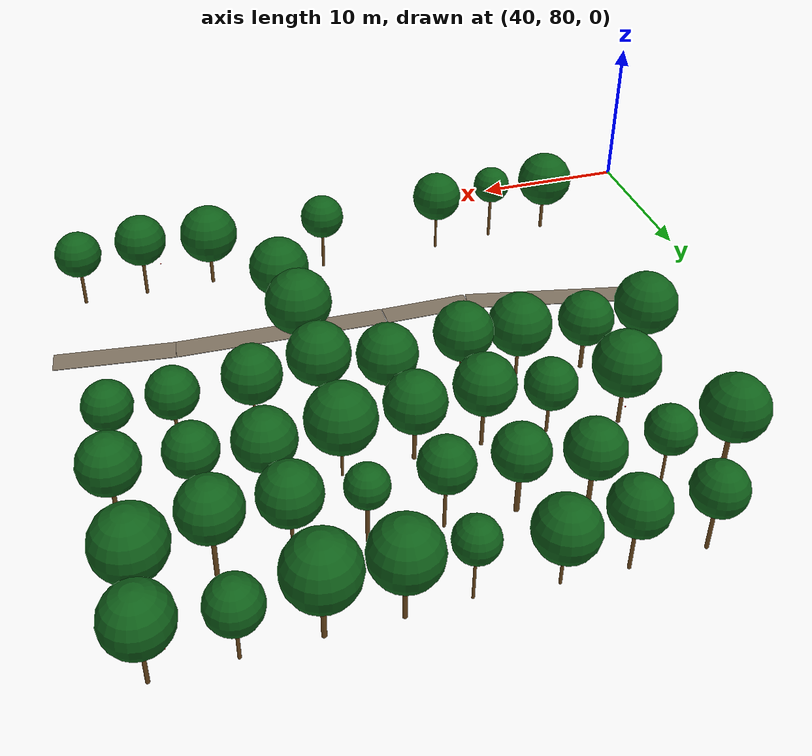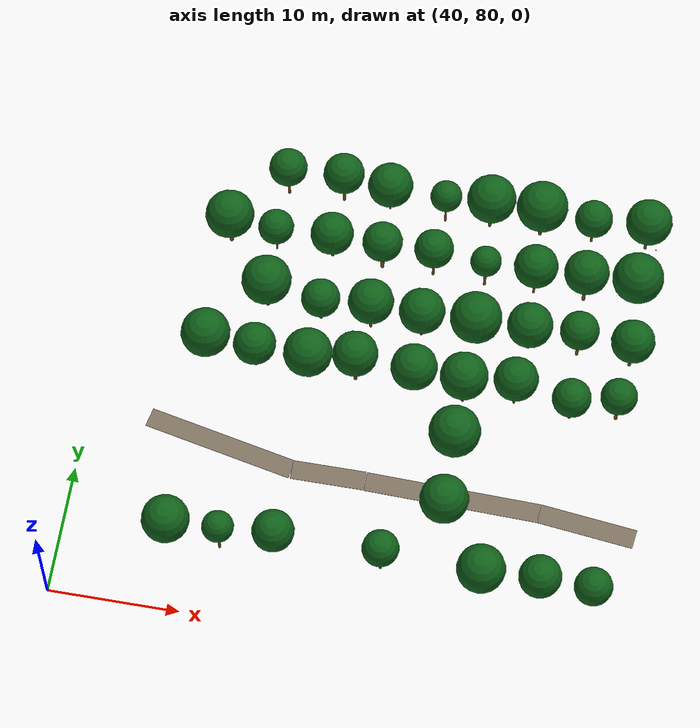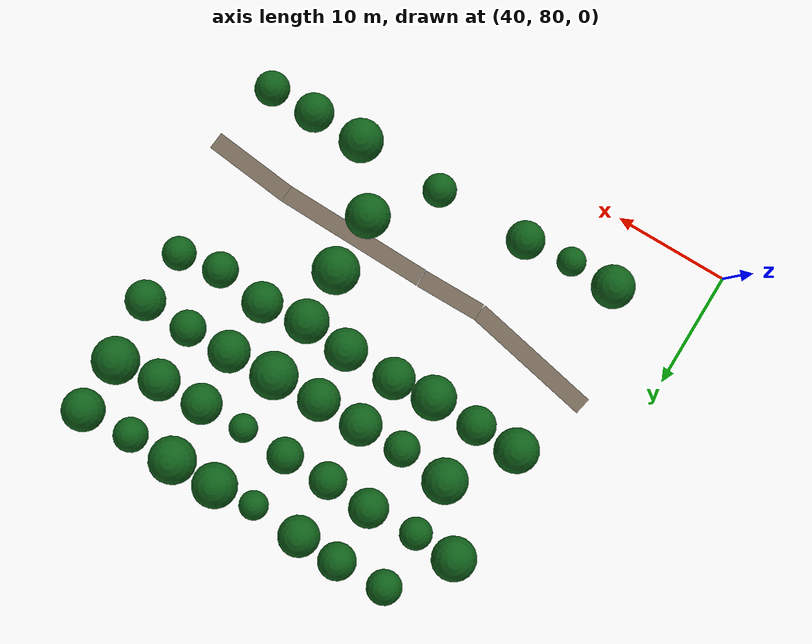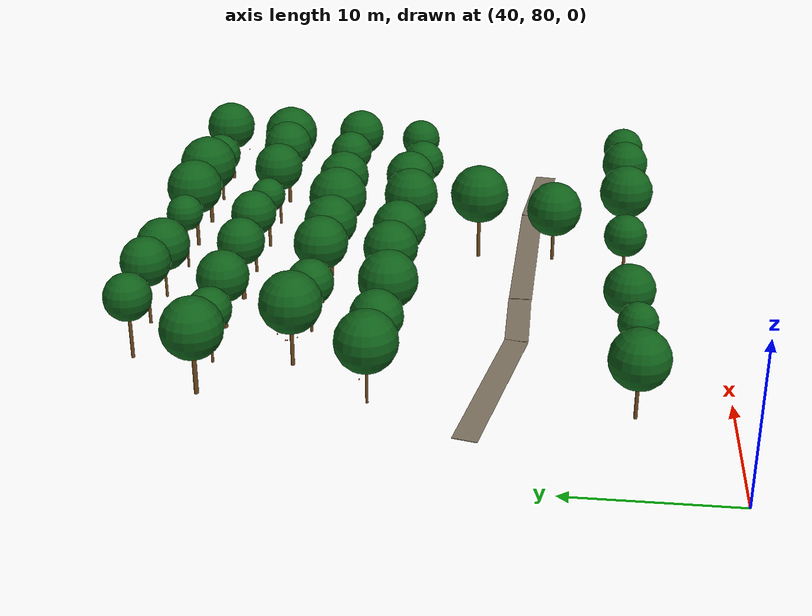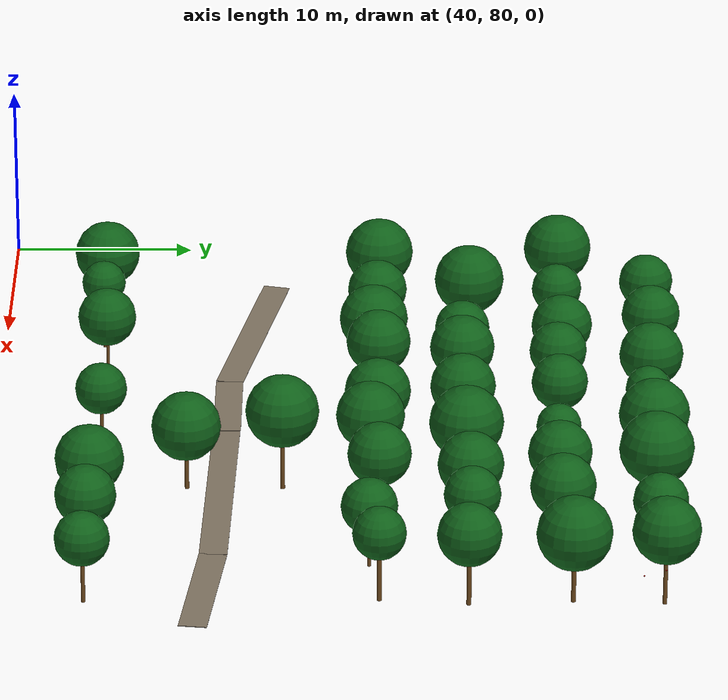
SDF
<sdf version="1.9">
 <world name="cheongsong_orchard">
  <model name="road_45">
   <static>true</static>
   <pose>78.7 91.9 0.02 0 0 3.0266</pose>
   <link name="link">
    <collision name="collision">
     <geometry><box><size>7.4 1.5 0.04</size></box></geometry>
     <surface><friction><ode><mu>0.9</mu><mu2>0.9</mu2></ode></friction></surface>
    </collision>
    <visual name="visual">
     <geometry><box><size>7.4 1.5 0.04</size></box></geometry>
     <material><ambient>0.4 0.35 0.28 1</ambient><diffuse>0.5 0.45 0.38 1</diffuse></material>
    </visual>
   </link>
  </model>
  <model name="road_46">
   <static>true</static>
   <pose>68.4 92.5 0.02 0 0 3.1149</pose>
   <link name="link">
    <collision name="collision">
     <geometry><box><size>13.3 1.5 0.04</size></box></geometry>
     <surface><friction><ode><mu>0.9</mu><mu2>0.9</mu2></ode></friction></surface>
    </collision>
    <visual name="visual">
     <geometry><box><size>13.3 1.5 0.04</size></box></geometry>
     <material><ambient>0.4 0.35 0.28 1</ambient><diffuse>0.5 0.45 0.38 1</diffuse></material>
    </visual>
   </link>
  </model>
  <model name="road_47">
   <static>true</static>
   <pose>58.9 92.7 0.02 0 0 3.1416</pose>
   <link name="link">
    <collision name="collision">
     <geometry><box><size>5.6 1.5 0.04</size></box></geometry>
     <surface><friction><ode><mu>0.9</mu><mu2>0.9</mu2></ode></friction></surface>
    </collision>
    <visual name="visual">
     <geometry><box><size>5.6 1.5 0.04</size></box></geometry>
     <material><ambient>0.4 0.35 0.28 1</ambient><diffuse>0.5 0.45 0.38 1</diffuse></material>
    </visual>
   </link>
  </model>
  <model name="road_48">
   <static>true</static>
   <pose>50.4 93.9 0.02 0 0 2.9339</pose>
   <link name="link">
    <collision name="collision">
     <geometry><box><size>11.7 1.5 0.04</size></box></geometry>
     <surface><friction><ode><mu>0.9</mu><mu2>0.9</mu2></ode></friction></surface>
    </collision>
    <visual name="visual">
     <geometry><box><size>11.7 1.5 0.04</size></box></geometry>
     <material><ambient>0.4 0.35 0.28 1</ambient><diffuse>0.5 0.45 0.38 1</diffuse></material>
    </visual>
   </link>
  </model>
  <model name="apple_tree_2123">
   <static>true</static>
   <pose>48.00 85.62 0 0 0 0</pose>
   <link name="link">
    <collision name="trunk_col">
     <pose>0 0 1.04 0 0 0</pose>
     <geometry><cylinder><radius>0.112</radius><length>2.07</length></cylinder></geometry>
    </collision>
    <visual name="trunk_vis">
     <pose>0 0 1.04 0 0 0</pose>
     <geometry><cylinder><radius>0.112</radius><length>2.07</length></cylinder></geometry>
     <material><ambient>0.35 0.22 0.08 1</ambient><diffuse>0.45 0.30 0.12 1</diffuse></material>
    </visual>
    <collision name="canopy_col">
     <pose>0 0 3.88 0 0 0</pose>
     <geometry><sphere><radius>1.81</radius></sphere></geometry>
    </collision>
    <visual name="canopy_vis">
     <pose>0 0 3.88 0 0 0</pose>
     <geometry><sphere><radius>1.81</radius></sphere></geometry>
     <material><ambient>0.04 0.28 0.06 1</ambient><diffuse>0.06 0.38 0.10 1</diffuse></material>
    </visual>
   </link>
  </model>
  <model name="apple_tree_2124">
   <static>true</static>
   <pose>51.94 85.60 0 0 0 0</pose>
   <link name="link">
    <collision name="trunk_col">
     <pose>0 0 1.43 0 0 0</pose>
     <geometry><cylinder><radius>0.097</radius><length>2.86</length></cylinder></geometry>
    </collision>
    <visual name="trunk_vis">
     <pose>0 0 1.43 0 0 0</pose>
     <geometry><cylinder><radius>0.097</radius><length>2.86</length></cylinder></geometry>
     <material><ambient>0.35 0.22 0.08 1</ambient><diffuse>0.45 0.30 0.12 1</diffuse></material>
    </visual>
    <collision name="canopy_col">
     <pose>0 0 4.07 0 0 0</pose>
     <geometry><sphere><radius>1.21</radius></sphere></geometry>
    </collision>
    <visual name="canopy_vis">
     <pose>0 0 4.07 0 0 0</pose>
     <geometry><sphere><radius>1.21</radius></sphere></geometry>
     <material><ambient>0.04 0.28 0.06 1</ambient><diffuse>0.06 0.38 0.10 1</diffuse></material>
    </visual>
   </link>
  </model>
  <model name="apple_tree_2125">
   <static>true</static>
   <pose>56.02 85.97 0 0 0 0</pose>
   <link name="link">
    <collision name="trunk_col">
     <pose>0 0 1.23 0 0 0</pose>
     <geometry><cylinder><radius>0.081</radius><length>2.45</length></cylinder></geometry>
    </collision>
    <visual name="trunk_vis">
     <pose>0 0 1.23 0 0 0</pose>
     <geometry><cylinder><radius>0.081</radius><length>2.45</length></cylinder></geometry>
     <material><ambient>0.35 0.22 0.08 1</ambient><diffuse>0.45 0.30 0.12 1</diffuse></material>
    </visual>
    <collision name="canopy_col">
     <pose>0 0 4.05 0 0 0</pose>
     <geometry><sphere><radius>1.60</radius></sphere></geometry>
    </collision>
    <visual name="canopy_vis">
     <pose>0 0 4.05 0 0 0</pose>
     <geometry><sphere><radius>1.60</radius></sphere></geometry>
     <material><ambient>0.04 0.28 0.06 1</ambient><diffuse>0.06 0.38 0.10 1</diffuse></material>
    </visual>
   </link>
  </model>
  <model name="apple_tree_2127">
   <static>true</static>
   <pose>64.03 86.01 0 0 0 0</pose>
   <link name="link">
    <collision name="trunk_col">
     <pose>0 0 1.25 0 0 0</pose>
     <geometry><cylinder><radius>0.100</radius><length>2.51</length></cylinder></geometry>
    </collision>
    <visual name="trunk_vis">
     <pose>0 0 1.25 0 0 0</pose>
     <geometry><cylinder><radius>0.100</radius><length>2.51</length></cylinder></geometry>
     <material><ambient>0.35 0.22 0.08 1</ambient><diffuse>0.45 0.30 0.12 1</diffuse></material>
    </visual>
    <collision name="canopy_col">
     <pose>0 0 3.91 0 0 0</pose>
     <geometry><sphere><radius>1.40</radius></sphere></geometry>
    </collision>
    <visual name="canopy_vis">
     <pose>0 0 3.91 0 0 0</pose>
     <geometry><sphere><radius>1.40</radius></sphere></geometry>
     <material><ambient>0.04 0.28 0.06 1</ambient><diffuse>0.06 0.38 0.10 1</diffuse></material>
    </visual>
   </link>
  </model>
  <model name="apple_tree_2129">
   <static>true</static>
   <pose>71.55 85.74 0 0 0 0</pose>
   <link name="link">
    <collision name="trunk_col">
     <pose>0 0 0.98 0 0 0</pose>
     <geometry><cylinder><radius>0.112</radius><length>1.95</length></cylinder></geometry>
    </collision>
    <visual name="trunk_vis">
     <pose>0 0 0.98 0 0 0</pose>
     <geometry><cylinder><radius>0.112</radius><length>1.95</length></cylinder></geometry>
     <material><ambient>0.35 0.22 0.08 1</ambient><diffuse>0.45 0.30 0.12 1</diffuse></material>
    </visual>
    <collision name="canopy_col">
     <pose>0 0 3.79 0 0 0</pose>
     <geometry><sphere><radius>1.84</radius></sphere></geometry>
    </collision>
    <visual name="canopy_vis">
     <pose>0 0 3.79 0 0 0</pose>
     <geometry><sphere><radius>1.84</radius></sphere></geometry>
     <material><ambient>0.04 0.28 0.06 1</ambient><diffuse>0.06 0.38 0.10 1</diffuse></material>
    </visual>
   </link>
  </model>
  <model name="apple_tree_2130">
   <static>true</static>
   <pose>75.92 85.75 0 0 0 0</pose>
   <link name="link">
    <collision name="trunk_col">
     <pose>0 0 1.24 0 0 0</pose>
     <geometry><cylinder><radius>0.108</radius><length>2.48</length></cylinder></geometry>
    </collision>
    <visual name="trunk_vis">
     <pose>0 0 1.24 0 0 0</pose>
     <geometry><cylinder><radius>0.108</radius><length>2.48</length></cylinder></geometry>
     <material><ambient>0.35 0.22 0.08 1</ambient><diffuse>0.45 0.30 0.12 1</diffuse></material>
    </visual>
    <collision name="canopy_col">
     <pose>0 0 4.10 0 0 0</pose>
     <geometry><sphere><radius>1.62</radius></sphere></geometry>
    </collision>
    <visual name="canopy_vis">
     <pose>0 0 4.10 0 0 0</pose>
     <geometry><sphere><radius>1.62</radius></sphere></geometry>
     <material><ambient>0.04 0.28 0.06 1</ambient><diffuse>0.06 0.38 0.10 1</diffuse></material>
    </visual>
   </link>
  </model>
  <model name="apple_tree_2131">
   <static>true</static>
   <pose>79.87 85.76 0 0 0 0</pose>
   <link name="link">
    <collision name="trunk_col">
     <pose>0 0 1.16 0 0 0</pose>
     <geometry><cylinder><radius>0.106</radius><length>2.32</length></cylinder></geometry>
    </collision>
    <visual name="trunk_vis">
     <pose>0 0 1.16 0 0 0</pose>
     <geometry><cylinder><radius>0.106</radius><length>2.32</length></cylinder></geometry>
     <material><ambient>0.35 0.22 0.08 1</ambient><diffuse>0.45 0.30 0.12 1</diffuse></material>
    </visual>
    <collision name="canopy_col">
     <pose>0 0 3.77 0 0 0</pose>
     <geometry><sphere><radius>1.45</radius></sphere></geometry>
    </collision>
    <visual name="canopy_vis">
     <pose>0 0 3.77 0 0 0</pose>
     <geometry><sphere><radius>1.45</radius></sphere></geometry>
     <material><ambient>0.04 0.28 0.06 1</ambient><diffuse>0.06 0.38 0.10 1</diffuse></material>
    </visual>
   </link>
  </model>
  <model name="apple_tree_2174">
   <static>true</static>
   <pose>67.99 90.73 0 0 0 0</pose>
   <link name="link">
    <collision name="trunk_col">
     <pose>0 0 0.98 0 0 0</pose>
     <geometry><cylinder><radius>0.114</radius><length>1.95</length></cylinder></geometry>
    </collision>
    <visual name="trunk_vis">
     <pose>0 0 0.98 0 0 0</pose>
     <geometry><cylinder><radius>0.114</radius><length>1.95</length></cylinder></geometry>
     <material><ambient>0.35 0.22 0.08 1</ambient><diffuse>0.45 0.30 0.12 1</diffuse></material>
    </visual>
    <collision name="canopy_col">
     <pose>0 0 3.81 0 0 0</pose>
     <geometry><sphere><radius>1.86</radius></sphere></geometry>
    </collision>
    <visual name="canopy_vis">
     <pose>0 0 3.81 0 0 0</pose>
     <geometry><sphere><radius>1.86</radius></sphere></geometry>
     <material><ambient>0.04 0.28 0.06 1</ambient><diffuse>0.06 0.38 0.10 1</diffuse></material>
    </visual>
   </link>
  </model>
  <model name="apple_tree_2213">
   <static>true</static>
   <pose>67.93 95.86 0 0 0 0</pose>
   <link name="link">
    <collision name="trunk_col">
     <pose>0 0 1.37 0 0 0</pose>
     <geometry><cylinder><radius>0.121</radius><length>2.74</length></cylinder></geometry>
    </collision>
    <visual name="trunk_vis">
     <pose>0 0 1.37 0 0 0</pose>
     <geometry><cylinder><radius>0.121</radius><length>2.74</length></cylinder></geometry>
     <material><ambient>0.35 0.22 0.08 1</ambient><diffuse>0.45 0.30 0.12 1</diffuse></material>
    </visual>
    <collision name="canopy_col">
     <pose>0 0 4.72 0 0 0</pose>
     <geometry><sphere><radius>1.97</radius></sphere></geometry>
    </collision>
    <visual name="canopy_vis">
     <pose>0 0 4.72 0 0 0</pose>
     <geometry><sphere><radius>1.97</radius></sphere></geometry>
     <material><ambient>0.04 0.28 0.06 1</ambient><diffuse>0.06 0.38 0.10 1</diffuse></material>
    </visual>
   </link>
  </model>
  <model name="apple_tree_2250">
   <static>true</static>
   <pose>48.04 100.99 0 0 0 0</pose>
   <link name="link">
    <collision name="trunk_col">
     <pose>0 0 1.09 0 0 0</pose>
     <geometry><cylinder><radius>0.084</radius><length>2.18</length></cylinder></geometry>
    </collision>
    <visual name="trunk_vis">
     <pose>0 0 1.09 0 0 0</pose>
     <geometry><cylinder><radius>0.084</radius><length>2.18</length></cylinder></geometry>
     <material><ambient>0.35 0.22 0.08 1</ambient><diffuse>0.45 0.30 0.12 1</diffuse></material>
    </visual>
    <collision name="canopy_col">
     <pose>0 0 4.07 0 0 0</pose>
     <geometry><sphere><radius>1.89</radius></sphere></geometry>
    </collision>
    <visual name="canopy_vis">
     <pose>0 0 4.07 0 0 0</pose>
     <geometry><sphere><radius>1.89</radius></sphere></geometry>
     <material><ambient>0.04 0.28 0.06 1</ambient><diffuse>0.06 0.38 0.10 1</diffuse></material>
    </visual>
   </link>
  </model>
  <model name="apple_tree_2251">
   <static>true</static>
   <pose>51.82 100.89 0 0 0 0</pose>
   <link name="link">
    <collision name="trunk_col">
     <pose>0 0 1.01 0 0 0</pose>
     <geometry><cylinder><radius>0.130</radius><length>2.02</length></cylinder></geometry>
    </collision>
    <visual name="trunk_vis">
     <pose>0 0 1.01 0 0 0</pose>
     <geometry><cylinder><radius>0.130</radius><length>2.02</length></cylinder></geometry>
     <material><ambient>0.35 0.22 0.08 1</ambient><diffuse>0.45 0.30 0.12 1</diffuse></material>
    </visual>
    <collision name="canopy_col">
     <pose>0 0 3.66 0 0 0</pose>
     <geometry><sphere><radius>1.64</radius></sphere></geometry>
    </collision>
    <visual name="canopy_vis">
     <pose>0 0 3.66 0 0 0</pose>
     <geometry><sphere><radius>1.64</radius></sphere></geometry>
     <material><ambient>0.04 0.28 0.06 1</ambient><diffuse>0.06 0.38 0.10 1</diffuse></material>
    </visual>
   </link>
  </model>
  <model name="apple_tree_2252">
   <static>true</static>
   <pose>55.95 100.70 0 0 0 0</pose>
   <link name="link">
    <collision name="trunk_col">
     <pose>0 0 1.06 0 0 0</pose>
     <geometry><cylinder><radius>0.099</radius><length>2.11</length></cylinder></geometry>
    </collision>
    <visual name="trunk_vis">
     <pose>0 0 1.06 0 0 0</pose>
     <geometry><cylinder><radius>0.099</radius><length>2.11</length></cylinder></geometry>
     <material><ambient>0.35 0.22 0.08 1</ambient><diffuse>0.45 0.30 0.12 1</diffuse></material>
    </visual>
    <collision name="canopy_col">
     <pose>0 0 3.99 0 0 0</pose>
     <geometry><sphere><radius>1.88</radius></sphere></geometry>
    </collision>
    <visual name="canopy_vis">
     <pose>0 0 3.99 0 0 0</pose>
     <geometry><sphere><radius>1.88</radius></sphere></geometry>
     <material><ambient>0.04 0.28 0.06 1</ambient><diffuse>0.06 0.38 0.10 1</diffuse></material>
    </visual>
   </link>
  </model>
  <model name="apple_tree_2253">
   <static>true</static>
   <pose>59.53 100.97 0 0 0 0</pose>
   <link name="link">
    <collision name="trunk_col">
     <pose>0 0 1.36 0 0 0</pose>
     <geometry><cylinder><radius>0.134</radius><length>2.71</length></cylinder></geometry>
    </collision>
    <visual name="trunk_vis">
     <pose>0 0 1.36 0 0 0</pose>
     <geometry><cylinder><radius>0.134</radius><length>2.71</length></cylinder></geometry>
     <material><ambient>0.35 0.22 0.08 1</ambient><diffuse>0.45 0.30 0.12 1</diffuse></material>
    </visual>
    <collision name="canopy_col">
     <pose>0 0 4.46 0 0 0</pose>
     <geometry><sphere><radius>1.75</radius></sphere></geometry>
    </collision>
    <visual name="canopy_vis">
     <pose>0 0 4.46 0 0 0</pose>
     <geometry><sphere><radius>1.75</radius></sphere></geometry>
     <material><ambient>0.04 0.28 0.06 1</ambient><diffuse>0.06 0.38 0.10 1</diffuse></material>
    </visual>
   </link>
  </model>
  <model name="apple_tree_2254">
   <static>true</static>
   <pose>64.03 100.94 0 0 0 0</pose>
   <link name="link">
    <collision name="trunk_col">
     <pose>0 0 1.02 0 0 0</pose>
     <geometry><cylinder><radius>0.092</radius><length>2.03</length></cylinder></geometry>
    </collision>
    <visual name="trunk_vis">
     <pose>0 0 1.02 0 0 0</pose>
     <geometry><cylinder><radius>0.092</radius><length>2.03</length></cylinder></geometry>
     <material><ambient>0.35 0.22 0.08 1</ambient><diffuse>0.45 0.30 0.12 1</diffuse></material>
    </visual>
    <collision name="canopy_col">
     <pose>0 0 3.83 0 0 0</pose>
     <geometry><sphere><radius>1.79</radius></sphere></geometry>
    </collision>
    <visual name="canopy_vis">
     <pose>0 0 3.83 0 0 0</pose>
     <geometry><sphere><radius>1.79</radius></sphere></geometry>
     <material><ambient>0.04 0.28 0.06 1</ambient><diffuse>0.06 0.38 0.10 1</diffuse></material>
    </visual>
   </link>
  </model>
  <model name="apple_tree_2255">
   <static>true</static>
   <pose>67.89 100.56 0 0 0 0</pose>
   <link name="link">
    <collision name="trunk_col">
     <pose>0 0 1.31 0 0 0</pose>
     <geometry><cylinder><radius>0.114</radius><length>2.62</length></cylinder></geometry>
    </collision>
    <visual name="trunk_vis">
     <pose>0 0 1.31 0 0 0</pose>
     <geometry><cylinder><radius>0.114</radius><length>2.62</length></cylinder></geometry>
     <material><ambient>0.35 0.22 0.08 1</ambient><diffuse>0.45 0.30 0.12 1</diffuse></material>
    </visual>
    <collision name="canopy_col">
     <pose>0 0 4.47 0 0 0</pose>
     <geometry><sphere><radius>1.84</radius></sphere></geometry>
    </collision>
    <visual name="canopy_vis">
     <pose>0 0 4.47 0 0 0</pose>
     <geometry><sphere><radius>1.84</radius></sphere></geometry>
     <material><ambient>0.04 0.28 0.06 1</ambient><diffuse>0.06 0.38 0.10 1</diffuse></material>
    </visual>
   </link>
  </model>
  <model name="apple_tree_2256">
   <static>true</static>
   <pose>71.77 101.05 0 0 0 0</pose>
   <link name="link">
    <collision name="trunk_col">
     <pose>0 0 1.29 0 0 0</pose>
     <geometry><cylinder><radius>0.084</radius><length>2.58</length></cylinder></geometry>
    </collision>
    <visual name="trunk_vis">
     <pose>0 0 1.29 0 0 0</pose>
     <geometry><cylinder><radius>0.084</radius><length>2.58</length></cylinder></geometry>
     <material><ambient>0.35 0.22 0.08 1</ambient><diffuse>0.45 0.30 0.12 1</diffuse></material>
    </visual>
    <collision name="canopy_col">
     <pose>0 0 4.29 0 0 0</pose>
     <geometry><sphere><radius>1.70</radius></sphere></geometry>
    </collision>
    <visual name="canopy_vis">
     <pose>0 0 4.29 0 0 0</pose>
     <geometry><sphere><radius>1.70</radius></sphere></geometry>
     <material><ambient>0.04 0.28 0.06 1</ambient><diffuse>0.06 0.38 0.10 1</diffuse></material>
    </visual>
   </link>
  </model>
  <model name="apple_tree_2257">
   <static>true</static>
   <pose>76.09 100.53 0 0 0 0</pose>
   <link name="link">
    <collision name="trunk_col">
     <pose>0 0 1.05 0 0 0</pose>
     <geometry><cylinder><radius>0.105</radius><length>2.10</length></cylinder></geometry>
    </collision>
    <visual name="trunk_vis">
     <pose>0 0 1.05 0 0 0</pose>
     <geometry><cylinder><radius>0.105</radius><length>2.10</length></cylinder></geometry>
     <material><ambient>0.35 0.22 0.08 1</ambient><diffuse>0.45 0.30 0.12 1</diffuse></material>
    </visual>
    <collision name="canopy_col">
     <pose>0 0 3.60 0 0 0</pose>
     <geometry><sphere><radius>1.50</radius></sphere></geometry>
    </collision>
    <visual name="canopy_vis">
     <pose>0 0 3.60 0 0 0</pose>
     <geometry><sphere><radius>1.50</radius></sphere></geometry>
     <material><ambient>0.04 0.28 0.06 1</ambient><diffuse>0.06 0.38 0.10 1</diffuse></material>
    </visual>
   </link>
  </model>
  <model name="apple_tree_2258">
   <static>true</static>
   <pose>79.58 101.06 0 0 0 0</pose>
   <link name="link">
    <collision name="trunk_col">
     <pose>0 0 1.29 0 0 0</pose>
     <geometry><cylinder><radius>0.133</radius><length>2.58</length></cylinder></geometry>
    </collision>
    <visual name="trunk_vis">
     <pose>0 0 1.29 0 0 0</pose>
     <geometry><cylinder><radius>0.133</radius><length>2.58</length></cylinder></geometry>
     <material><ambient>0.35 0.22 0.08 1</ambient><diffuse>0.45 0.30 0.12 1</diffuse></material>
    </visual>
    <collision name="canopy_col">
     <pose>0 0 3.99 0 0 0</pose>
     <geometry><sphere><radius>1.41</radius></sphere></geometry>
    </collision>
    <visual name="canopy_vis">
     <pose>0 0 3.99 0 0 0</pose>
     <geometry><sphere><radius>1.41</radius></sphere></geometry>
     <material><ambient>0.04 0.28 0.06 1</ambient><diffuse>0.06 0.38 0.10 1</diffuse></material>
    </visual>
   </link>
  </model>
  <model name="apple_tree_2300">
   <static>true</static>
   <pose>51.80 106.02 0 0 0 0</pose>
   <link name="link">
    <collision name="trunk_col">
     <pose>0 0 1.18 0 0 0</pose>
     <geometry><cylinder><radius>0.119</radius><length>2.36</length></cylinder></geometry>
    </collision>
    <visual name="trunk_vis">
     <pose>0 0 1.18 0 0 0</pose>
     <geometry><cylinder><radius>0.119</radius><length>2.36</length></cylinder></geometry>
     <material><ambient>0.35 0.22 0.08 1</ambient><diffuse>0.45 0.30 0.12 1</diffuse></material>
    </visual>
    <collision name="canopy_col">
     <pose>0 0 4.29 0 0 0</pose>
     <geometry><sphere><radius>1.92</radius></sphere></geometry>
    </collision>
    <visual name="canopy_vis">
     <pose>0 0 4.29 0 0 0</pose>
     <geometry><sphere><radius>1.92</radius></sphere></geometry>
     <material><ambient>0.04 0.28 0.06 1</ambient><diffuse>0.06 0.38 0.10 1</diffuse></material>
    </visual>
   </link>
  </model>
  <model name="apple_tree_2301">
   <static>true</static>
   <pose>56.05 105.59 0 0 0 0</pose>
   <link name="link">
    <collision name="trunk_col">
     <pose>0 0 1.00 0 0 0</pose>
     <geometry><cylinder><radius>0.096</radius><length>1.99</length></cylinder></geometry>
    </collision>
    <visual name="trunk_vis">
     <pose>0 0 1.00 0 0 0</pose>
     <geometry><cylinder><radius>0.096</radius><length>1.99</length></cylinder></geometry>
     <material><ambient>0.35 0.22 0.08 1</ambient><diffuse>0.45 0.30 0.12 1</diffuse></material>
    </visual>
    <collision name="canopy_col">
     <pose>0 0 3.49 0 0 0</pose>
     <geometry><sphere><radius>1.50</radius></sphere></geometry>
    </collision>
    <visual name="canopy_vis">
     <pose>0 0 3.49 0 0 0</pose>
     <geometry><sphere><radius>1.50</radius></sphere></geometry>
     <material><ambient>0.04 0.28 0.06 1</ambient><diffuse>0.06 0.38 0.10 1</diffuse></material>
    </visual>
   </link>
  </model>
  <model name="apple_tree_2302">
   <static>true</static>
   <pose>59.94 105.54 0 0 0 0</pose>
   <link name="link">
    <collision name="trunk_col">
     <pose>0 0 1.30 0 0 0</pose>
     <geometry><cylinder><radius>0.112</radius><length>2.60</length></cylinder></geometry>
    </collision>
    <visual name="trunk_vis">
     <pose>0 0 1.30 0 0 0</pose>
     <geometry><cylinder><radius>0.112</radius><length>2.60</length></cylinder></geometry>
     <material><ambient>0.35 0.22 0.08 1</ambient><diffuse>0.45 0.30 0.12 1</diffuse></material>
    </visual>
    <collision name="canopy_col">
     <pose>0 0 4.36 0 0 0</pose>
     <geometry><sphere><radius>1.76</radius></sphere></geometry>
    </collision>
    <visual name="canopy_vis">
     <pose>0 0 4.36 0 0 0</pose>
     <geometry><sphere><radius>1.76</radius></sphere></geometry>
     <material><ambient>0.04 0.28 0.06 1</ambient><diffuse>0.06 0.38 0.10 1</diffuse></material>
    </visual>
   </link>
  </model>
  <model name="apple_tree_2303">
   <static>true</static>
   <pose>63.87 105.54 0 0 0 0</pose>
   <link name="link">
    <collision name="trunk_col">
     <pose>0 0 1.15 0 0 0</pose>
     <geometry><cylinder><radius>0.120</radius><length>2.31</length></cylinder></geometry>
    </collision>
    <visual name="trunk_vis">
     <pose>0 0 1.15 0 0 0</pose>
     <geometry><cylinder><radius>0.120</radius><length>2.31</length></cylinder></geometry>
     <material><ambient>0.35 0.22 0.08 1</ambient><diffuse>0.45 0.30 0.12 1</diffuse></material>
    </visual>
    <collision name="canopy_col">
     <pose>0 0 4.08 0 0 0</pose>
     <geometry><sphere><radius>1.77</radius></sphere></geometry>
    </collision>
    <visual name="canopy_vis">
     <pose>0 0 4.08 0 0 0</pose>
     <geometry><sphere><radius>1.77</radius></sphere></geometry>
     <material><ambient>0.04 0.28 0.06 1</ambient><diffuse>0.06 0.38 0.10 1</diffuse></material>
    </visual>
   </link>
  </model>
  <model name="apple_tree_2304">
   <static>true</static>
   <pose>67.99 105.68 0 0 0 0</pose>
   <link name="link">
    <collision name="trunk_col">
     <pose>0 0 1.06 0 0 0</pose>
     <geometry><cylinder><radius>0.081</radius><length>2.13</length></cylinder></geometry>
    </collision>
    <visual name="trunk_vis">
     <pose>0 0 1.06 0 0 0</pose>
     <geometry><cylinder><radius>0.081</radius><length>2.13</length></cylinder></geometry>
     <material><ambient>0.35 0.22 0.08 1</ambient><diffuse>0.45 0.30 0.12 1</diffuse></material>
    </visual>
    <collision name="canopy_col">
     <pose>0 0 4.12 0 0 0</pose>
     <geometry><sphere><radius>2.00</radius></sphere></geometry>
    </collision>
    <visual name="canopy_vis">
     <pose>0 0 4.12 0 0 0</pose>
     <geometry><sphere><radius>2.00</radius></sphere></geometry>
     <material><ambient>0.04 0.28 0.06 1</ambient><diffuse>0.06 0.38 0.10 1</diffuse></material>
    </visual>
   </link>
  </model>
  <model name="apple_tree_2305">
   <static>true</static>
   <pose>72.11 105.86 0 0 0 0</pose>
   <link name="link">
    <collision name="trunk_col">
     <pose>0 0 1.06 0 0 0</pose>
     <geometry><cylinder><radius>0.133</radius><length>2.11</length></cylinder></geometry>
    </collision>
    <visual name="trunk_vis">
     <pose>0 0 1.06 0 0 0</pose>
     <geometry><cylinder><radius>0.133</radius><length>2.11</length></cylinder></geometry>
     <material><ambient>0.35 0.22 0.08 1</ambient><diffuse>0.45 0.30 0.12 1</diffuse></material>
    </visual>
    <collision name="canopy_col">
     <pose>0 0 3.88 0 0 0</pose>
     <geometry><sphere><radius>1.76</radius></sphere></geometry>
    </collision>
    <visual name="canopy_vis">
     <pose>0 0 3.88 0 0 0</pose>
     <geometry><sphere><radius>1.76</radius></sphere></geometry>
     <material><ambient>0.04 0.28 0.06 1</ambient><diffuse>0.06 0.38 0.10 1</diffuse></material>
    </visual>
   </link>
  </model>
  <model name="apple_tree_2306">
   <static>true</static>
   <pose>75.88 105.89 0 0 0 0</pose>
   <link name="link">
    <collision name="trunk_col">
     <pose>0 0 1.35 0 0 0</pose>
     <geometry><cylinder><radius>0.120</radius><length>2.70</length></cylinder></geometry>
    </collision>
    <visual name="trunk_vis">
     <pose>0 0 1.35 0 0 0</pose>
     <geometry><cylinder><radius>0.120</radius><length>2.70</length></cylinder></geometry>
     <material><ambient>0.35 0.22 0.08 1</ambient><diffuse>0.45 0.30 0.12 1</diffuse></material>
    </visual>
    <collision name="canopy_col">
     <pose>0 0 4.20 0 0 0</pose>
     <geometry><sphere><radius>1.50</radius></sphere></geometry>
    </collision>
    <visual name="canopy_vis">
     <pose>0 0 4.20 0 0 0</pose>
     <geometry><sphere><radius>1.50</radius></sphere></geometry>
     <material><ambient>0.04 0.28 0.06 1</ambient><diffuse>0.06 0.38 0.10 1</diffuse></material>
    </visual>
   </link>
  </model>
  <model name="apple_tree_2307">
   <static>true</static>
   <pose>79.98 105.69 0 0 0 0</pose>
   <link name="link">
    <collision name="trunk_col">
     <pose>0 0 1.24 0 0 0</pose>
     <geometry><cylinder><radius>0.122</radius><length>2.49</length></cylinder></geometry>
    </collision>
    <visual name="trunk_vis">
     <pose>0 0 1.24 0 0 0</pose>
     <geometry><cylinder><radius>0.122</radius><length>2.49</length></cylinder></geometry>
     <material><ambient>0.35 0.22 0.08 1</ambient><diffuse>0.45 0.30 0.12 1</diffuse></material>
    </visual>
    <collision name="canopy_col">
     <pose>0 0 4.17 0 0 0</pose>
     <geometry><sphere><radius>1.68</radius></sphere></geometry>
    </collision>
    <visual name="canopy_vis">
     <pose>0 0 4.17 0 0 0</pose>
     <geometry><sphere><radius>1.68</radius></sphere></geometry>
     <material><ambient>0.04 0.28 0.06 1</ambient><diffuse>0.06 0.38 0.10 1</diffuse></material>
    </visual>
   </link>
  </model>
  <model name="apple_tree_2343">
   <static>true</static>
   <pose>48.01 111.04 0 0 0 0</pose>
   <link name="link">
    <collision name="trunk_col">
     <pose>0 0 1.24 0 0 0</pose>
     <geometry><cylinder><radius>0.141</radius><length>2.48</length></cylinder></geometry>
    </collision>
    <visual name="trunk_vis">
     <pose>0 0 1.24 0 0 0</pose>
     <geometry><cylinder><radius>0.141</radius><length>2.48</length></cylinder></geometry>
     <material><ambient>0.35 0.22 0.08 1</ambient><diffuse>0.45 0.30 0.12 1</diffuse></material>
    </visual>
    <collision name="canopy_col">
     <pose>0 0 4.35 0 0 0</pose>
     <geometry><sphere><radius>1.88</radius></sphere></geometry>
    </collision>
    <visual name="canopy_vis">
     <pose>0 0 4.35 0 0 0</pose>
     <geometry><sphere><radius>1.88</radius></sphere></geometry>
     <material><ambient>0.04 0.28 0.06 1</ambient><diffuse>0.06 0.38 0.10 1</diffuse></material>
    </visual>
   </link>
  </model>
  <model name="apple_tree_2344">
   <static>true</static>
   <pose>51.62 110.92 0 0 0 0</pose>
   <link name="link">
    <collision name="trunk_col">
     <pose>0 0 1.13 0 0 0</pose>
     <geometry><cylinder><radius>0.082</radius><length>2.26</length></cylinder></geometry>
    </collision>
    <visual name="trunk_vis">
     <pose>0 0 1.13 0 0 0</pose>
     <geometry><cylinder><radius>0.082</radius><length>2.26</length></cylinder></geometry>
     <material><ambient>0.35 0.22 0.08 1</ambient><diffuse>0.45 0.30 0.12 1</diffuse></material>
    </visual>
    <collision name="canopy_col">
     <pose>0 0 3.64 0 0 0</pose>
     <geometry><sphere><radius>1.38</radius></sphere></geometry>
    </collision>
    <visual name="canopy_vis">
     <pose>0 0 3.64 0 0 0</pose>
     <geometry><sphere><radius>1.38</radius></sphere></geometry>
     <material><ambient>0.04 0.28 0.06 1</ambient><diffuse>0.06 0.38 0.10 1</diffuse></material>
    </visual>
   </link>
  </model>
  <model name="apple_tree_2345">
   <static>true</static>
   <pose>55.96 111.09 0 0 0 0</pose>
   <link name="link">
    <collision name="trunk_col">
     <pose>0 0 0.99 0 0 0</pose>
     <geometry><cylinder><radius>0.135</radius><length>1.97</length></cylinder></geometry>
    </collision>
    <visual name="trunk_vis">
     <pose>0 0 0.99 0 0 0</pose>
     <geometry><cylinder><radius>0.135</radius><length>1.97</length></cylinder></geometry>
     <material><ambient>0.35 0.22 0.08 1</ambient><diffuse>0.45 0.30 0.12 1</diffuse></material>
    </visual>
    <collision name="canopy_col">
     <pose>0 0 3.64 0 0 0</pose>
     <geometry><sphere><radius>1.67</radius></sphere></geometry>
    </collision>
    <visual name="canopy_vis">
     <pose>0 0 3.64 0 0 0</pose>
     <geometry><sphere><radius>1.67</radius></sphere></geometry>
     <material><ambient>0.04 0.28 0.06 1</ambient><diffuse>0.06 0.38 0.10 1</diffuse></material>
    </visual>
   </link>
  </model>
  <model name="apple_tree_2346">
   <static>true</static>
   <pose>59.94 110.77 0 0 0 0</pose>
   <link name="link">
    <collision name="trunk_col">
     <pose>0 0 1.31 0 0 0</pose>
     <geometry><cylinder><radius>0.150</radius><length>2.61</length></cylinder></geometry>
    </collision>
    <visual name="trunk_vis">
     <pose>0 0 1.31 0 0 0</pose>
     <geometry><cylinder><radius>0.150</radius><length>2.61</length></cylinder></geometry>
     <material><ambient>0.35 0.22 0.08 1</ambient><diffuse>0.45 0.30 0.12 1</diffuse></material>
    </visual>
    <collision name="canopy_col">
     <pose>0 0 4.18 0 0 0</pose>
     <geometry><sphere><radius>1.56</radius></sphere></geometry>
    </collision>
    <visual name="canopy_vis">
     <pose>0 0 4.18 0 0 0</pose>
     <geometry><sphere><radius>1.56</radius></sphere></geometry>
     <material><ambient>0.04 0.28 0.06 1</ambient><diffuse>0.06 0.38 0.10 1</diffuse></material>
    </visual>
   </link>
  </model>
  <model name="apple_tree_2347">
   <static>true</static>
   <pose>63.93 110.75 0 0 0 0</pose>
   <link name="link">
    <collision name="trunk_col">
     <pose>0 0 1.43 0 0 0</pose>
     <geometry><cylinder><radius>0.097</radius><length>2.86</length></cylinder></geometry>
    </collision>
    <visual name="trunk_vis">
     <pose>0 0 1.43 0 0 0</pose>
     <geometry><cylinder><radius>0.097</radius><length>2.86</length></cylinder></geometry>
     <material><ambient>0.35 0.22 0.08 1</ambient><diffuse>0.45 0.30 0.12 1</diffuse></material>
    </visual>
    <collision name="canopy_col">
     <pose>0 0 4.39 0 0 0</pose>
     <geometry><sphere><radius>1.52</radius></sphere></geometry>
    </collision>
    <visual name="canopy_vis">
     <pose>0 0 4.39 0 0 0</pose>
     <geometry><sphere><radius>1.52</radius></sphere></geometry>
     <material><ambient>0.04 0.28 0.06 1</ambient><diffuse>0.06 0.38 0.10 1</diffuse></material>
    </visual>
   </link>
  </model>
  <model name="apple_tree_2348">
   <static>true</static>
   <pose>67.98 110.60 0 0 0 0</pose>
   <link name="link">
    <collision name="trunk_col">
     <pose>0 0 1.36 0 0 0</pose>
     <geometry><cylinder><radius>0.106</radius><length>2.72</length></cylinder></geometry>
    </collision>
    <visual name="trunk_vis">
     <pose>0 0 1.36 0 0 0</pose>
     <geometry><cylinder><radius>0.106</radius><length>2.72</length></cylinder></geometry>
     <material><ambient>0.35 0.22 0.08 1</ambient><diffuse>0.45 0.30 0.12 1</diffuse></material>
    </visual>
    <collision name="canopy_col">
     <pose>0 0 3.92 0 0 0</pose>
     <geometry><sphere><radius>1.20</radius></sphere></geometry>
    </collision>
    <visual name="canopy_vis">
     <pose>0 0 3.92 0 0 0</pose>
     <geometry><sphere><radius>1.20</radius></sphere></geometry>
     <material><ambient>0.04 0.28 0.06 1</ambient><diffuse>0.06 0.38 0.10 1</diffuse></material>
    </visual>
   </link>
  </model>
  <model name="apple_tree_2349">
   <static>true</static>
   <pose>71.83 110.56 0 0 0 0</pose>
   <link name="link">
    <collision name="trunk_col">
     <pose>0 0 1.38 0 0 0</pose>
     <geometry><cylinder><radius>0.093</radius><length>2.77</length></cylinder></geometry>
    </collision>
    <visual name="trunk_vis">
     <pose>0 0 1.38 0 0 0</pose>
     <geometry><cylinder><radius>0.093</radius><length>2.77</length></cylinder></geometry>
     <material><ambient>0.35 0.22 0.08 1</ambient><diffuse>0.45 0.30 0.12 1</diffuse></material>
    </visual>
    <collision name="canopy_col">
     <pose>0 0 4.47 0 0 0</pose>
     <geometry><sphere><radius>1.70</radius></sphere></geometry>
    </collision>
    <visual name="canopy_vis">
     <pose>0 0 4.47 0 0 0</pose>
     <geometry><sphere><radius>1.70</radius></sphere></geometry>
     <material><ambient>0.04 0.28 0.06 1</ambient><diffuse>0.06 0.38 0.10 1</diffuse></material>
    </visual>
   </link>
  </model>
  <model name="apple_tree_2350">
   <static>true</static>
   <pose>75.71 110.61 0 0 0 0</pose>
   <link name="link">
    <collision name="trunk_col">
     <pose>0 0 1.46 0 0 0</pose>
     <geometry><cylinder><radius>0.128</radius><length>2.92</length></cylinder></geometry>
    </collision>
    <visual name="trunk_vis">
     <pose>0 0 1.46 0 0 0</pose>
     <geometry><cylinder><radius>0.128</radius><length>2.92</length></cylinder></geometry>
     <material><ambient>0.35 0.22 0.08 1</ambient><diffuse>0.45 0.30 0.12 1</diffuse></material>
    </visual>
    <collision name="canopy_col">
     <pose>0 0 4.64 0 0 0</pose>
     <geometry><sphere><radius>1.73</radius></sphere></geometry>
    </collision>
    <visual name="canopy_vis">
     <pose>0 0 4.64 0 0 0</pose>
     <geometry><sphere><radius>1.73</radius></sphere></geometry>
     <material><ambient>0.04 0.28 0.06 1</ambient><diffuse>0.06 0.38 0.10 1</diffuse></material>
    </visual>
   </link>
  </model>
  <model name="apple_tree_2351">
   <static>true</static>
   <pose>79.62 111.10 0 0 0 0</pose>
   <link name="link">
    <collision name="trunk_col">
     <pose>0 0 1.04 0 0 0</pose>
     <geometry><cylinder><radius>0.120</radius><length>2.09</length></cylinder></geometry>
    </collision>
    <visual name="trunk_vis">
     <pose>0 0 1.04 0 0 0</pose>
     <geometry><cylinder><radius>0.120</radius><length>2.09</length></cylinder></geometry>
     <material><ambient>0.35 0.22 0.08 1</ambient><diffuse>0.45 0.30 0.12 1</diffuse></material>
    </visual>
    <collision name="canopy_col">
     <pose>0 0 4.06 0 0 0</pose>
     <geometry><sphere><radius>1.98</radius></sphere></geometry>
    </collision>
    <visual name="canopy_vis">
     <pose>0 0 4.06 0 0 0</pose>
     <geometry><sphere><radius>1.98</radius></sphere></geometry>
     <material><ambient>0.04 0.28 0.06 1</ambient><diffuse>0.06 0.38 0.10 1</diffuse></material>
    </visual>
   </link>
  </model>
  <model name="apple_tree_2383">
   <static>true</static>
   <pose>51.68 115.89 0 0 0 0</pose>
   <link name="link">
    <collision name="trunk_col">
     <pose>0 0 1.33 0 0 0</pose>
     <geometry><cylinder><radius>0.110</radius><length>2.66</length></cylinder></geometry>
    </collision>
    <visual name="trunk_vis">
     <pose>0 0 1.33 0 0 0</pose>
     <geometry><cylinder><radius>0.110</radius><length>2.66</length></cylinder></geometry>
     <material><ambient>0.35 0.22 0.08 1</ambient><diffuse>0.45 0.30 0.12 1</diffuse></material>
    </visual>
    <collision name="canopy_col">
     <pose>0 0 4.16 0 0 0</pose>
     <geometry><sphere><radius>1.49</radius></sphere></geometry>
    </collision>
    <visual name="canopy_vis">
     <pose>0 0 4.16 0 0 0</pose>
     <geometry><sphere><radius>1.49</radius></sphere></geometry>
     <material><ambient>0.04 0.28 0.06 1</ambient><diffuse>0.06 0.38 0.10 1</diffuse></material>
    </visual>
   </link>
  </model>
  <model name="apple_tree_2384">
   <static>true</static>
   <pose>56.03 115.98 0 0 0 0</pose>
   <link name="link">
    <collision name="trunk_col">
     <pose>0 0 1.39 0 0 0</pose>
     <geometry><cylinder><radius>0.100</radius><length>2.77</length></cylinder></geometry>
    </collision>
    <visual name="trunk_vis">
     <pose>0 0 1.39 0 0 0</pose>
     <geometry><cylinder><radius>0.100</radius><length>2.77</length></cylinder></geometry>
     <material><ambient>0.35 0.22 0.08 1</ambient><diffuse>0.45 0.30 0.12 1</diffuse></material>
    </visual>
    <collision name="canopy_col">
     <pose>0 0 4.37 0 0 0</pose>
     <geometry><sphere><radius>1.60</radius></sphere></geometry>
    </collision>
    <visual name="canopy_vis">
     <pose>0 0 4.37 0 0 0</pose>
     <geometry><sphere><radius>1.60</radius></sphere></geometry>
     <material><ambient>0.04 0.28 0.06 1</ambient><diffuse>0.06 0.38 0.10 1</diffuse></material>
    </visual>
   </link>
  </model>
  <model name="apple_tree_2385">
   <static>true</static>
   <pose>59.69 115.88 0 0 0 0</pose>
   <link name="link">
    <collision name="trunk_col">
     <pose>0 0 1.03 0 0 0</pose>
     <geometry><cylinder><radius>0.086</radius><length>2.07</length></cylinder></geometry>
    </collision>
    <visual name="trunk_vis">
     <pose>0 0 1.03 0 0 0</pose>
     <geometry><cylinder><radius>0.086</radius><length>2.07</length></cylinder></geometry>
     <material><ambient>0.35 0.22 0.08 1</ambient><diffuse>0.45 0.30 0.12 1</diffuse></material>
    </visual>
    <collision name="canopy_col">
     <pose>0 0 3.82 0 0 0</pose>
     <geometry><sphere><radius>1.75</radius></sphere></geometry>
    </collision>
    <visual name="canopy_vis">
     <pose>0 0 3.82 0 0 0</pose>
     <geometry><sphere><radius>1.75</radius></sphere></geometry>
     <material><ambient>0.04 0.28 0.06 1</ambient><diffuse>0.06 0.38 0.10 1</diffuse></material>
    </visual>
   </link>
  </model>
  <model name="apple_tree_2386">
   <static>true</static>
   <pose>64.10 115.53 0 0 0 0</pose>
   <link name="link">
    <collision name="trunk_col">
     <pose>0 0 1.43 0 0 0</pose>
     <geometry><cylinder><radius>0.080</radius><length>2.86</length></cylinder></geometry>
    </collision>
    <visual name="trunk_vis">
     <pose>0 0 1.43 0 0 0</pose>
     <geometry><cylinder><radius>0.080</radius><length>2.86</length></cylinder></geometry>
     <material><ambient>0.35 0.22 0.08 1</ambient><diffuse>0.45 0.30 0.12 1</diffuse></material>
    </visual>
    <collision name="canopy_col">
     <pose>0 0 4.09 0 0 0</pose>
     <geometry><sphere><radius>1.23</radius></sphere></geometry>
    </collision>
    <visual name="canopy_vis">
     <pose>0 0 4.09 0 0 0</pose>
     <geometry><sphere><radius>1.23</radius></sphere></geometry>
     <material><ambient>0.04 0.28 0.06 1</ambient><diffuse>0.06 0.38 0.10 1</diffuse></material>
    </visual>
   </link>
  </model>
  <model name="apple_tree_2387">
   <static>true</static>
   <pose>67.60 115.69 0 0 0 0</pose>
   <link name="link">
    <collision name="trunk_col">
     <pose>0 0 1.29 0 0 0</pose>
     <geometry><cylinder><radius>0.121</radius><length>2.57</length></cylinder></geometry>
    </collision>
    <visual name="trunk_vis">
     <pose>0 0 1.29 0 0 0</pose>
     <geometry><cylinder><radius>0.121</radius><length>2.57</length></cylinder></geometry>
     <material><ambient>0.35 0.22 0.08 1</ambient><diffuse>0.45 0.30 0.12 1</diffuse></material>
    </visual>
    <collision name="canopy_col">
     <pose>0 0 4.48 0 0 0</pose>
     <geometry><sphere><radius>1.90</radius></sphere></geometry>
    </collision>
    <visual name="canopy_vis">
     <pose>0 0 4.48 0 0 0</pose>
     <geometry><sphere><radius>1.90</radius></sphere></geometry>
     <material><ambient>0.04 0.28 0.06 1</ambient><diffuse>0.06 0.38 0.10 1</diffuse></material>
    </visual>
   </link>
  </model>
  <model name="apple_tree_2388">
   <static>true</static>
   <pose>71.55 115.65 0 0 0 0</pose>
   <link name="link">
    <collision name="trunk_col">
     <pose>0 0 1.29 0 0 0</pose>
     <geometry><cylinder><radius>0.138</radius><length>2.58</length></cylinder></geometry>
    </collision>
    <visual name="trunk_vis">
     <pose>0 0 1.29 0 0 0</pose>
     <geometry><cylinder><radius>0.138</radius><length>2.58</length></cylinder></geometry>
     <material><ambient>0.35 0.22 0.08 1</ambient><diffuse>0.45 0.30 0.12 1</diffuse></material>
    </visual>
    <collision name="canopy_col">
     <pose>0 0 4.57 0 0 0</pose>
     <geometry><sphere><radius>1.99</radius></sphere></geometry>
    </collision>
    <visual name="canopy_vis">
     <pose>0 0 4.57 0 0 0</pose>
     <geometry><sphere><radius>1.99</radius></sphere></geometry>
     <material><ambient>0.04 0.28 0.06 1</ambient><diffuse>0.06 0.38 0.10 1</diffuse></material>
    </visual>
   </link>
  </model>
  <model name="apple_tree_2389">
   <static>true</static>
   <pose>75.58 115.71 0 0 0 0</pose>
   <link name="link">
    <collision name="trunk_col">
     <pose>0 0 1.13 0 0 0</pose>
     <geometry><cylinder><radius>0.095</radius><length>2.26</length></cylinder></geometry>
    </collision>
    <visual name="trunk_vis">
     <pose>0 0 1.13 0 0 0</pose>
     <geometry><cylinder><radius>0.095</radius><length>2.26</length></cylinder></geometry>
     <material><ambient>0.35 0.22 0.08 1</ambient><diffuse>0.45 0.30 0.12 1</diffuse></material>
    </visual>
    <collision name="canopy_col">
     <pose>0 0 3.72 0 0 0</pose>
     <geometry><sphere><radius>1.46</radius></sphere></geometry>
    </collision>
    <visual name="canopy_vis">
     <pose>0 0 3.72 0 0 0</pose>
     <geometry><sphere><radius>1.46</radius></sphere></geometry>
     <material><ambient>0.04 0.28 0.06 1</ambient><diffuse>0.06 0.38 0.10 1</diffuse></material>
    </visual>
   </link>
  </model>
  <model name="apple_tree_2390">
   <static>true</static>
   <pose>79.80 115.82 0 0 0 0</pose>
   <link name="link">
    <collision name="trunk_col">
     <pose>0 0 1.28 0 0 0</pose>
     <geometry><cylinder><radius>0.110</radius><length>2.57</length></cylinder></geometry>
    </collision>
    <visual name="trunk_vis">
     <pose>0 0 1.28 0 0 0</pose>
     <geometry><cylinder><radius>0.110</radius><length>2.57</length></cylinder></geometry>
     <material><ambient>0.35 0.22 0.08 1</ambient><diffuse>0.45 0.30 0.12 1</diffuse></material>
    </visual>
    <collision name="canopy_col">
     <pose>0 0 4.36 0 0 0</pose>
     <geometry><sphere><radius>1.79</radius></sphere></geometry>
    </collision>
    <visual name="canopy_vis">
     <pose>0 0 4.36 0 0 0</pose>
     <geometry><sphere><radius>1.79</radius></sphere></geometry>
     <material><ambient>0.04 0.28 0.06 1</ambient><diffuse>0.06 0.38 0.10 1</diffuse></material>
    </visual>
   </link>
  </model>
  <model name="apple_2130_2">
   <static>true</static>
   <pose>75.22 85.64 2.40 0 0 0</pose>
   <link name="link">
    <visual name="visual">
     <geometry><sphere><radius>0.04</radius></sphere></geometry>
     <material><ambient>0.7 0.05 0.02 1</ambient><diffuse>0.9 0.10 0.05 1</diffuse></material>
    </visual>
   </link>
  </model>
  <model name="apple_2130_3">
   <static>true</static>
   <pose>74.82 85.75 2.06 0 0 0</pose>
   <link name="link">
    <visual name="visual">
     <geometry><sphere><radius>0.04</radius></sphere></geometry>
     <material><ambient>0.7 0.05 0.02 1</ambient><diffuse>0.9 0.10 0.05 1</diffuse></material>
    </visual>
   </link>
  </model>
  <model name="apple_2250_0">
   <static>true</static>
   <pose>48.48 100.60 2.16 0 0 0</pose>
   <link name="link">
    <visual name="visual">
     <geometry><sphere><radius>0.04</radius></sphere></geometry>
     <material><ambient>0.7 0.05 0.02 1</ambient><diffuse>0.9 0.10 0.05 1</diffuse></material>
    </visual>
   </link>
  </model>
  <model name="apple_2250_2">
   <static>true</static>
   <pose>47.81 101.39 1.67 0 0 0</pose>
   <link name="link">
    <visual name="visual">
     <geometry><sphere><radius>0.04</radius></sphere></geometry>
     <material><ambient>0.7 0.05 0.02 1</ambient><diffuse>0.9 0.10 0.05 1</diffuse></material>
    </visual>
   </link>
  </model>
  <model name="apple_2250_4">
   <static>true</static>
   <pose>48.22 100.45 2.27 0 0 0</pose>
   <link name="link">
    <visual name="visual">
     <geometry><sphere><radius>0.04</radius></sphere></geometry>
     <material><ambient>0.7 0.05 0.02 1</ambient><diffuse>0.9 0.10 0.05 1</diffuse></material>
    </visual>
   </link>
  </model>
  <model name="apple_2300_0">
   <static>true</static>
   <pose>52.03 106.94 1.95 0 0 0</pose>
   <link name="link">
    <visual name="visual">
     <geometry><sphere><radius>0.04</radius></sphere></geometry>
     <material><ambient>0.7 0.05 0.02 1</ambient><diffuse>0.9 0.10 0.05 1</diffuse></material>
    </visual>
   </link>
  </model>
  <model name="apple_2300_1">
   <static>true</static>
   <pose>51.80 105.67 1.92 0 0 0</pose>
   <link name="link">
    <visual name="visual">
     <geometry><sphere><radius>0.04</radius></sphere></geometry>
     <material><ambient>0.7 0.05 0.02 1</ambient><diffuse>0.9 0.10 0.05 1</diffuse></material>
    </visual>
   </link>
  </model>
  <model name="apple_2300_2">
   <static>true</static>
   <pose>52.05 105.83 2.31 0 0 0</pose>
   <link name="link">
    <visual name="visual">
     <geometry><sphere><radius>0.04</radius></sphere></geometry>
     <material><ambient>0.7 0.05 0.02 1</ambient><diffuse>0.9 0.10 0.05 1</diffuse></material>
    </visual>
   </link>
  </model>
  <model name="apple_2300_3">
   <static>true</static>
   <pose>51.29 106.19 2.00 0 0 0</pose>
   <link name="link">
    <visual name="visual">
     <geometry><sphere><radius>0.04</radius></sphere></geometry>
     <material><ambient>0.7 0.05 0.02 1</ambient><diffuse>0.9 0.10 0.05 1</diffuse></material>
    </visual>
   </link>
  </model>
  <model name="apple_2300_4">
   <static>true</static>
   <pose>50.69 106.18 2.34 0 0 0</pose>
   <link name="link">
    <visual name="visual">
     <geometry><sphere><radius>0.04</radius></sphere></geometry>
     <material><ambient>0.7 0.05 0.02 1</ambient><diffuse>0.9 0.10 0.05 1</diffuse></material>
    </visual>
   </link>
  </model>
  <model name="apple_2350_0">
   <static>true</static>
   <pose>75.86 109.74 2.77 0 0 0</pose>
   <link name="link">
    <visual name="visual">
     <geometry><sphere><radius>0.04</radius></sphere></geometry>
     <material><ambient>0.7 0.05 0.02 1</ambient><diffuse>0.9 0.10 0.05 1</diffuse></material>
    </visual>
   </link>
  </model>
  <model name="apple_2350_1">
   <static>true</static>
   <pose>76.17 110.97 2.91 0 0 0</pose>
   <link name="link">
    <visual name="visual">
     <geometry><sphere><radius>0.04</radius></sphere></geometry>
     <material><ambient>0.7 0.05 0.02 1</ambient><diffuse>0.9 0.10 0.05 1</diffuse></material>
    </visual>
   </link>
  </model>
  <model name="apple_2350_2">
   <static>true</static>
   <pose>75.61 109.75 3.16 0 0 0</pose>
   <link name="link">
    <visual name="visual">
     <geometry><sphere><radius>0.04</radius></sphere></geometry>
     <material><ambient>0.7 0.05 0.02 1</ambient><diffuse>0.9 0.10 0.05 1</diffuse></material>
    </visual>
   </link>
  </model>
  <model name="apple_2390_0">
   <static>true</static>
   <pose>80.32 116.20 2.92 0 0 0</pose>
   <link name="link">
    <visual name="visual">
     <geometry><sphere><radius>0.04</radius></sphere></geometry>
     <material><ambient>0.7 0.05 0.02 1</ambient><diffuse>0.9 0.10 0.05 1</diffuse></material>
    </visual>
   </link>
  </model>
  <model name="apple_2390_1">
   <static>true</static>
   <pose>79.07 115.71 2.59 0 0 0</pose>
   <link name="link">
    <visual name="visual">
     <geometry><sphere><radius>0.04</radius></sphere></geometry>
     <material><ambient>0.7 0.05 0.02 1</ambient><diffuse>0.9 0.10 0.05 1</diffuse></material>
    </visual>
   </link>
  </model>
  <model name="apple_2390_2">
   <static>true</static>
   <pose>80.65 115.80 2.48 0 0 0</pose>
   <link name="link">
    <visual name="visual">
     <geometry><sphere><radius>0.04</radius></sphere></geometry>
     <material><ambient>0.7 0.05 0.02 1</ambient><diffuse>0.9 0.10 0.05 1</diffuse></material>
    </visual>
   </link>
  </model>
  <model name="apple_2390_3">
   <static>true</static>
   <pose>80.64 114.68 2.13 0 0 0</pose>
   <link name="link">
    <visual name="visual">
     <geometry><sphere><radius>0.04</radius></sphere></geometry>
     <material><ambient>0.7 0.05 0.02 1</ambient><diffuse>0.9 0.10 0.05 1</diffuse></material>
    </visual>
   </link>
  </model>
  <model name="apple_2390_4">
   <static>true</static>
   <pose>78.83 116.15 2.40 0 0 0</pose>
   <link name="link">
    <visual name="visual">
     <geometry><sphere><radius>0.04</radius></sphere></geometry>
     <material><ambient>0.7 0.05 0.02 1</ambient><diffuse>0.9 0.10 0.05 1</diffuse></material>
    </visual>
   </link>
  </model>
 </world>
</sdf>
